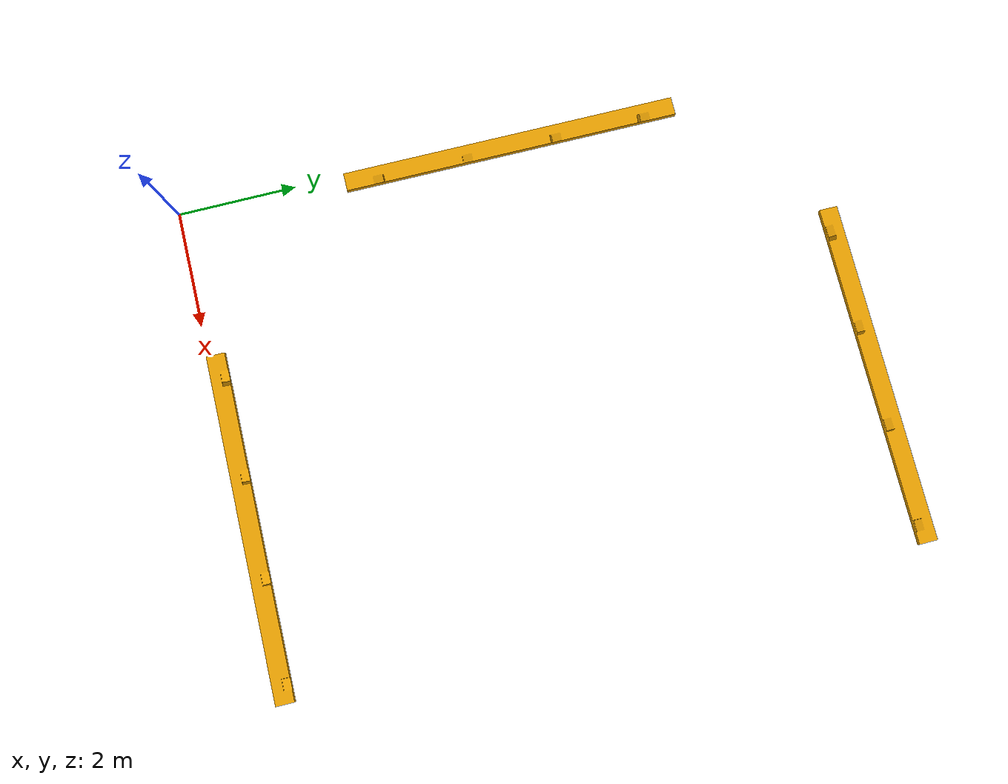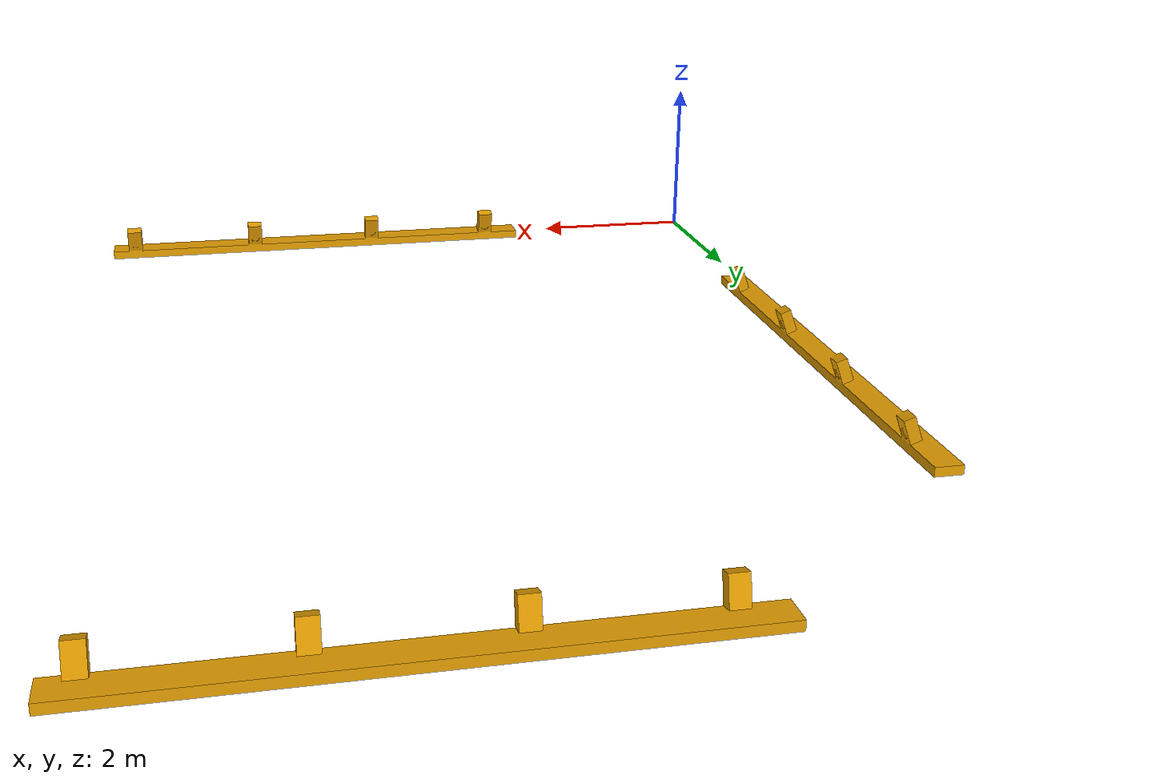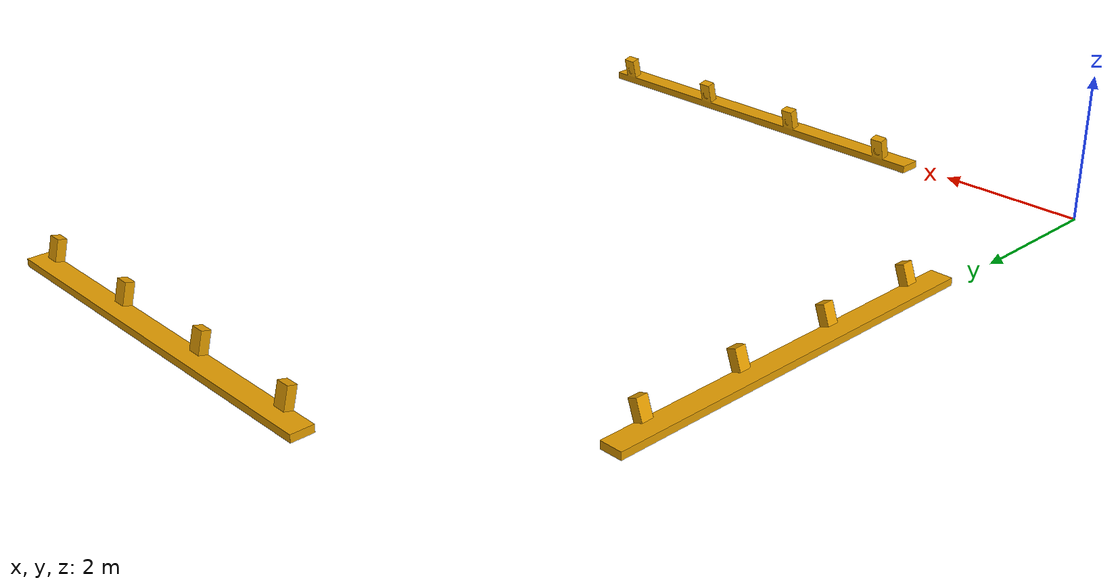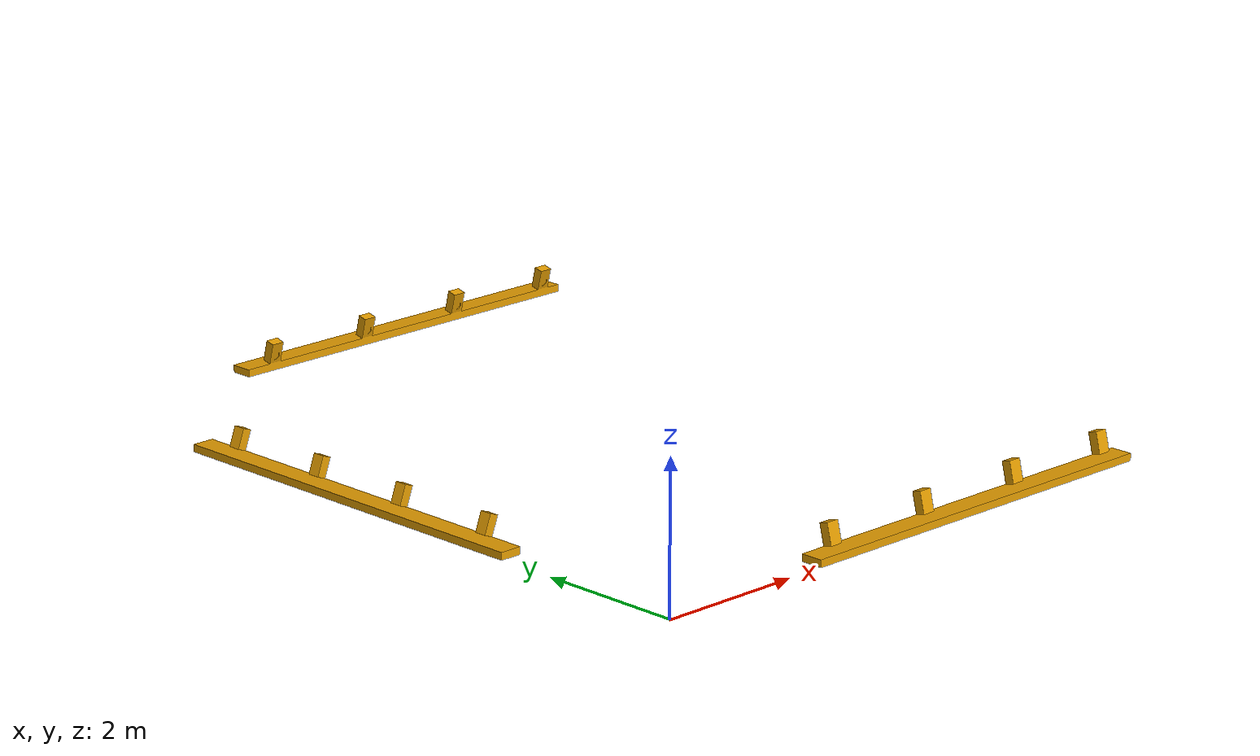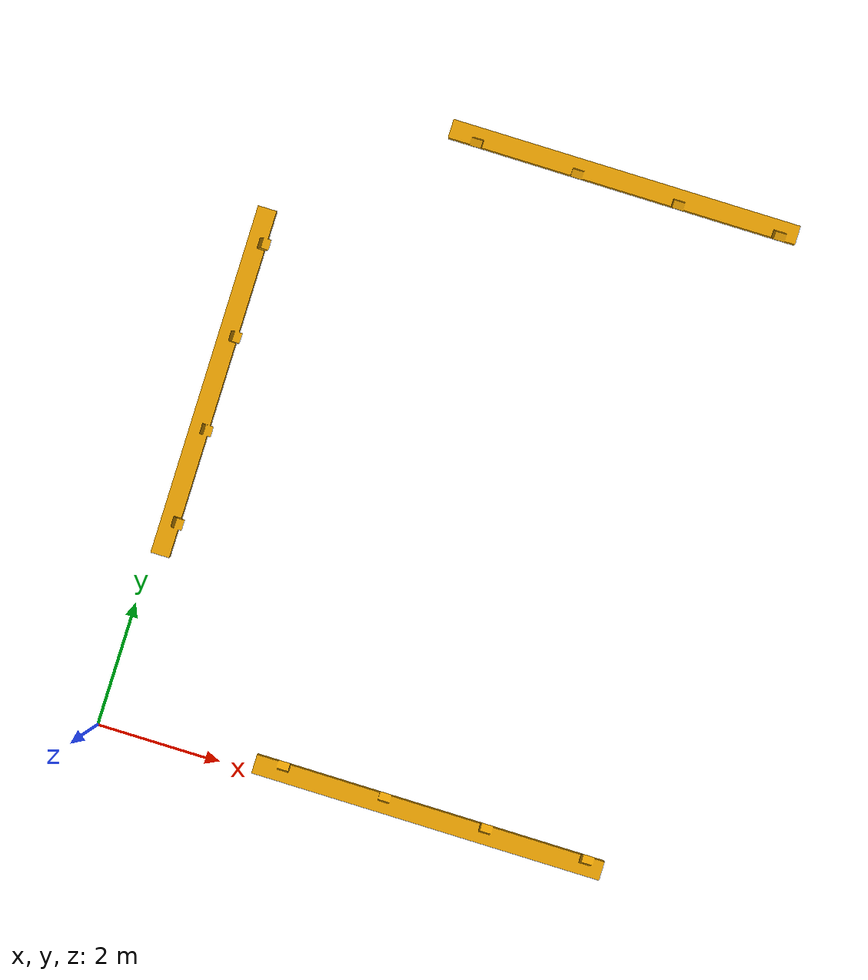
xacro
<?xml version="1.0"?>
<robot name = "cameraSystem" xmlns:xacro="http://www.ros.org/wiki/xacro">

  <!-- Description: A model of the camera system used in the superchick project.
     Author: Alex Tomkovich, October 2, 2016.
     Motion Capture STL/Mesh created by Adwait Kulkarn.
  -->

  <!-- Constants -->
  <xacro:property name="PI" value="3.14159" />

  <!-- Motion Capture Frame-->
  <link name="motion_capture_frame">
    <visual>
      <origin xyz="0 0 0" rpy="${PI/2} 0 ${PI/2}" />
      <geometry>
        <mesh filename="package://superchick/meshes/motionCapture.stl" scale = ".001 .001 .001" />
      </geometry>
    </visual>

    <collision>
      <origin xyz="0 0 0" rpy="${PI/2} 0 ${PI/2}" />
      <geometry>
        <mesh filename="package://superchick/meshes/motionCapture.stl" scale = ".001 .001 .001" />
      </geometry>
    </collision>
  </link>

</robot>
